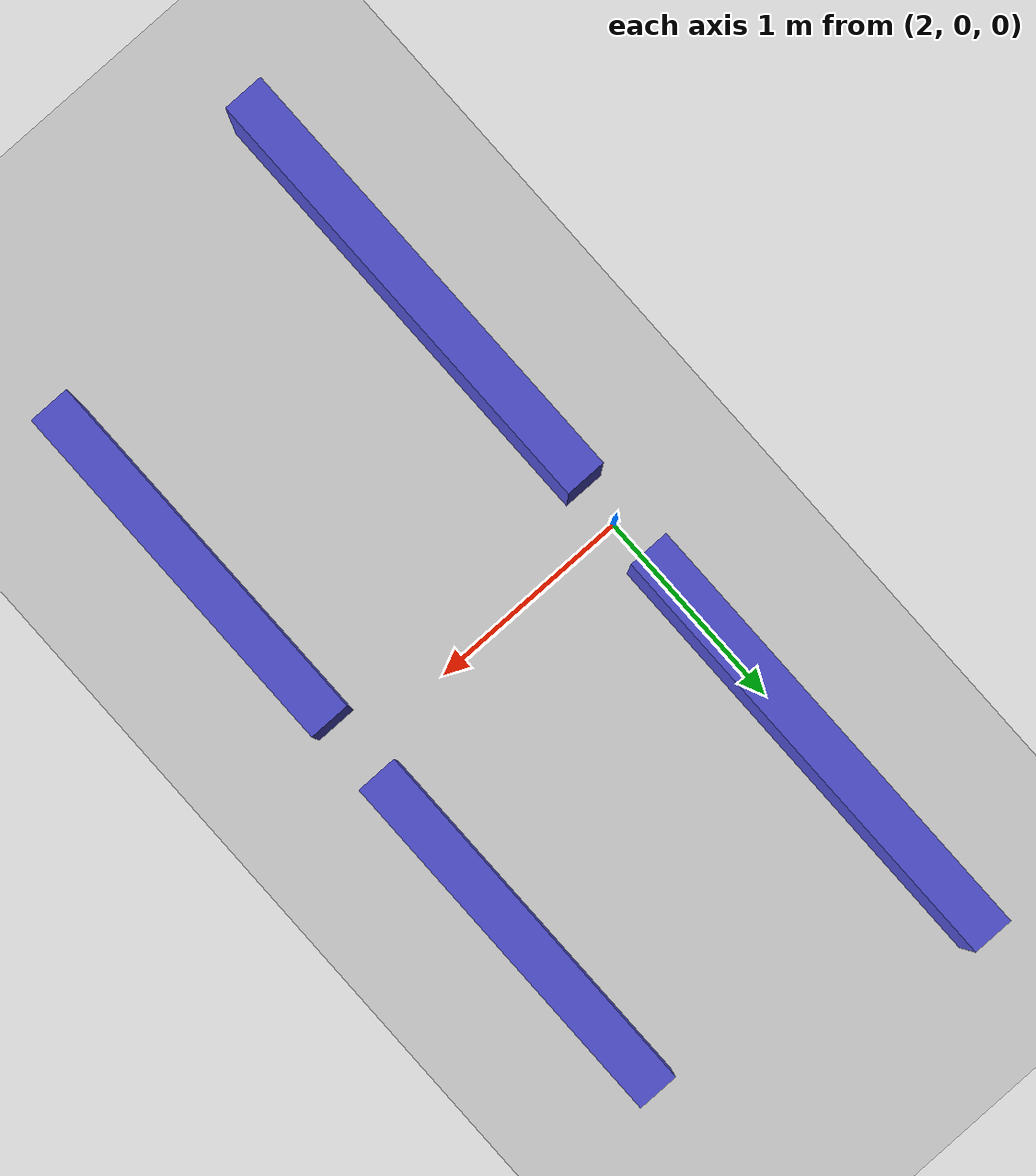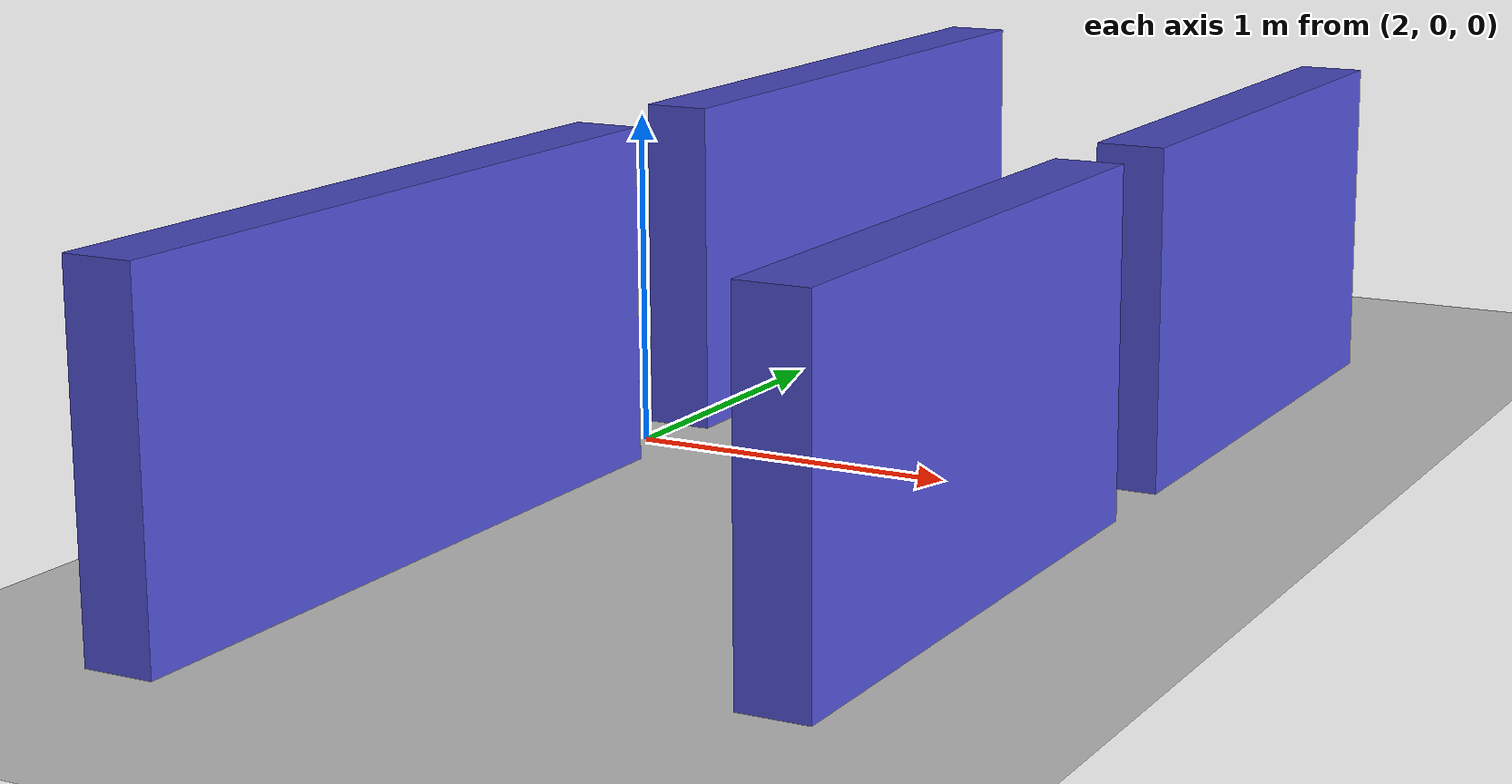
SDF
<?xml version="1.0" ?>
<sdf version="1.6">
  <world name="narrow_passages">

    <physics type="ode">
      <real_time_update_rate>1000.0</real_time_update_rate>
      <max_step_size>0.001</max_step_size>
      <real_time_factor>1.0</real_time_factor>
    </physics>

    <include><uri>model://sun</uri></include>
    <include><uri>model://ground_plane</uri></include>

    <!-- === First narrow gate at x=2.0 === -->
    <!-- Upper wall segment -->
    <model name="gate1_top">
      <static>true</static>
      <pose>2.0 1.3 0.5 0 0 0</pose>
      <link name="link">
        <collision name="c">
          <geometry><box><size>0.2 2.2 1.0</size></box></geometry>
        </collision>
        <visual name="v">
          <geometry><box><size>0.2 2.2 1.0</size></box></geometry>
          <material><ambient>0.3 0.3 0.8 1</ambient></material>
        </visual>
      </link>
    </model>

    <!-- Lower wall segment — gap of 0.6 m between them -->
    <model name="gate1_bottom">
      <static>true</static>
      <pose>2.0 -1.3 0.5 0 0 0</pose>
      <link name="link">
        <collision name="c">
          <geometry><box><size>0.2 2.2 1.0</size></box></geometry>
        </collision>
        <visual name="v">
          <geometry><box><size>0.2 2.2 1.0</size></box></geometry>
          <material><ambient>0.3 0.3 0.8 1</ambient></material>
        </visual>
      </link>
    </model>

    <!-- === Second narrow gate at x=3.5 === -->
    <model name="gate2_top">
      <static>true</static>
      <pose>3.5 1.05 0.5 0 0 0</pose>
      <link name="link">
        <collision name="c">
          <geometry><box><size>0.2 1.8 1.0</size></box></geometry>
        </collision>
        <visual name="v">
          <geometry><box><size>0.2 1.8 1.0</size></box></geometry>
          <material><ambient>0.3 0.3 0.8 1</ambient></material>
        </visual>
      </link>
    </model>

    <model name="gate2_bottom">
      <static>true</static>
      <pose>3.5 -1.05 0.5 0 0 0</pose>
      <link name="link">
        <collision name="c">
          <geometry><box><size>0.2 1.8 1.0</size></box></geometry>
        </collision>
        <visual name="v">
          <geometry><box><size>0.2 1.8 1.0</size></box></geometry>
          <material><ambient>0.3 0.3 0.8 1</ambient></material>
        </visual>
      </link>
    </model>

  </world>
</sdf>
